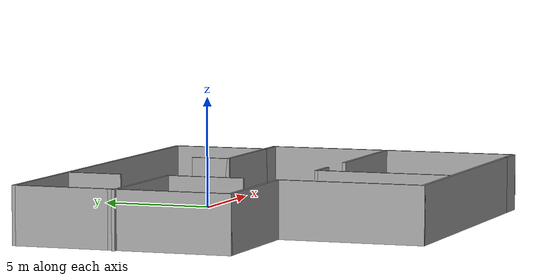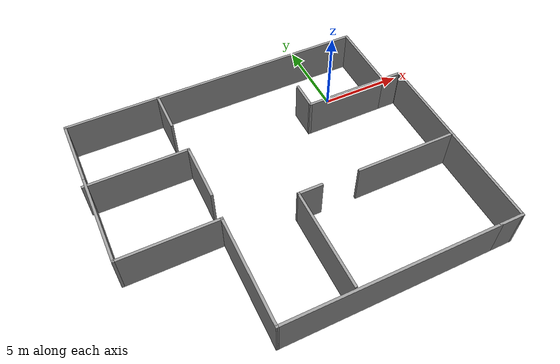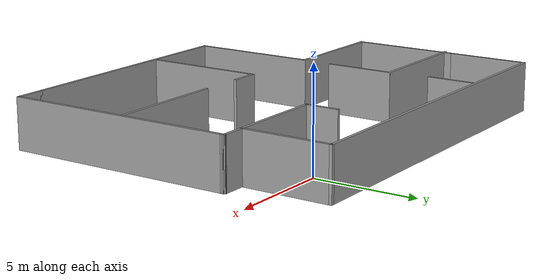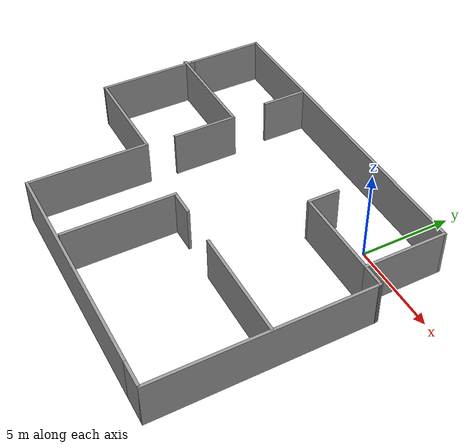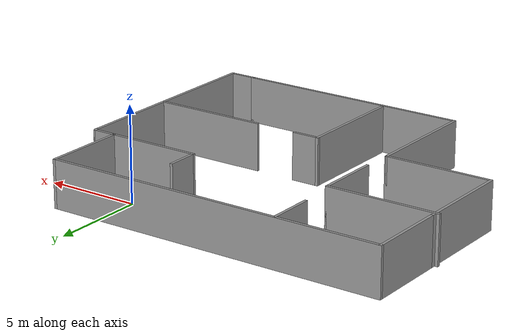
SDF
<?xml version='1.0'?>
<sdf version='1.7'>
  <model name='room'>
    <pose>-5.93375 -5.39 0 0 -0 0</pose>
    <link name='Wall_0'>
      <collision name='Wall_0_Collision'>
        <geometry>
          <box>
            <size>4.5 0.15 2.5</size>
          </box>
        </geometry>
        <pose>0 0 1.25 0 -0 0</pose>
      </collision>
      <visual name='Wall_0_Visual'>
        <pose>0 0 1.25 0 -0 0</pose>
        <geometry>
          <box>
            <size>4.5 0.15 2.5</size>
          </box>
        </geometry>
        <material>
          <script>
            <uri>file://media/materials/scripts/gazebo.material</uri>
            <name>Gazebo/Grey</name>
          </script>
          <ambient>1 1 1 1</ambient>
        </material>
        <meta>
          <layer>0</layer>
        </meta>
      </visual>
      <pose>8.52375 5.725 0 0 -0 1.5708</pose>
    </link>
    <link name='Wall_1'>
      <collision name='Wall_1_Collision'>
        <geometry>
          <box>
            <size>18.25 0.15 2.5</size>
          </box>
        </geometry>
        <pose>0 0 1.25 0 -0 0</pose>
      </collision>
      <visual name='Wall_1_Visual'>
        <pose>0 0 1.25 0 -0 0</pose>
        <geometry>
          <box>
            <size>18.25 0.15 2.5</size>
          </box>
        </geometry>
        <material>
          <script>
            <uri>file://media/materials/scripts/gazebo.material</uri>
            <name>Gazebo/Grey</name>
          </script>
          <ambient>1 1 1 1</ambient>
        </material>
        <meta>
          <layer>0</layer>
        </meta>
      </visual>
      <pose>-0.526248 7.9 0 0 -0 3.14159</pose>
    </link>
    <link name='Wall_10'>
      <collision name='Wall_10_Collision'>
        <geometry>
          <box>
            <size>0.25 0.15 2.5</size>
          </box>
        </geometry>
        <pose>0 0 1.25 0 -0 0</pose>
      </collision>
      <visual name='Wall_10_Visual'>
        <pose>0 0 1.25 0 -0 0</pose>
        <geometry>
          <box>
            <size>0.25 0.15 2.5</size>
          </box>
        </geometry>
        <material>
          <script>
            <uri>file://media/materials/scripts/gazebo.material</uri>
            <name>Gazebo/Grey</name>
          </script>
          <ambient>1 1 1 1</ambient>
        </material>
        <meta>
          <layer>0</layer>
        </meta>
      </visual>
      <pose>9.71081 3.4983 0 0 -0 1.8326</pose>
    </link>
    <link name='Wall_11'>
      <collision name='Wall_11_Collision'>
        <geometry>
          <box>
            <size>1.32412 0.15 2.5</size>
          </box>
        </geometry>
        <pose>0 0 1.25 0 -0 0</pose>
      </collision>
      <visual name='Wall_11_Visual'>
        <pose>0 0 1.25 0 -0 0</pose>
        <geometry>
          <box>
            <size>1.32412 0.15 2.5</size>
          </box>
        </geometry>
        <material>
          <script>
            <uri>file://media/materials/scripts/gazebo.material</uri>
            <name>Gazebo/Grey</name>
          </script>
          <ambient>1 1 1 1</ambient>
        </material>
        <meta>
          <layer>0</layer>
        </meta>
      </visual>
      <pose>9.11081 3.5483 0 0 -0 3.13869</pose>
    </link>
    <link name='Wall_13'>
      <collision name='Wall_13_Collision'>
        <geometry>
          <box>
            <size>5 0.15 2.5</size>
          </box>
        </geometry>
        <pose>0 0 1.25 0 -0 0</pose>
      </collision>
      <visual name='Wall_13_Visual'>
        <pose>0 0 1.25 0 -0 0</pose>
        <geometry>
          <box>
            <size>5 0.15 2.5</size>
          </box>
        </geometry>
        <material>
          <script>
            <uri>file://media/materials/scripts/gazebo.material</uri>
            <name>Gazebo/Grey</name>
          </script>
          <ambient>1 1 1 1</ambient>
        </material>
        <meta>
          <layer>0</layer>
        </meta>
      </visual>
      <pose>6.09875 3.55 0 0 -0 3.14159</pose>
    </link>
    <link name='Wall_14'>
      <collision name='Wall_14_Collision'>
        <geometry>
          <box>
            <size>1.75 0.15 2.5</size>
          </box>
        </geometry>
        <pose>0 0 1.25 0 -0 0</pose>
      </collision>
      <visual name='Wall_14_Visual'>
        <pose>0 0 1.25 0 -0 0</pose>
        <geometry>
          <box>
            <size>1.75 0.15 2.5</size>
          </box>
        </geometry>
        <material>
          <script>
            <uri>file://media/materials/scripts/gazebo.material</uri>
            <name>Gazebo/Grey</name>
          </script>
          <ambient>1 1 1 1</ambient>
        </material>
        <meta>
          <layer>0</layer>
        </meta>
      </visual>
      <pose>3.67375 4.35 0 0 -0 1.5708</pose>
    </link>
    <link name='Wall_16'>
      <collision name='Wall_16_Collision'>
        <geometry>
          <box>
            <size>6 0.15 2.5</size>
          </box>
        </geometry>
        <pose>0 0 1.25 0 -0 0</pose>
      </collision>
      <visual name='Wall_16_Visual'>
        <pose>0 0 1.25 0 -0 0</pose>
        <geometry>
          <box>
            <size>6 0.15 2.5</size>
          </box>
        </geometry>
        <material>
          <script>
            <uri>file://media/materials/scripts/gazebo.material</uri>
            <name>Gazebo/Grey</name>
          </script>
          <ambient>1 1 1 1</ambient>
        </material>
        <meta>
          <layer>0</layer>
        </meta>
      </visual>
      <pose>-6.81561 3.41448 0 0 -0 0</pose>
    </link>
    <link name='Wall_17'>
      <collision name='Wall_17_Collision'>
        <geometry>
          <box>
            <size>3.5 0.15 2.5</size>
          </box>
        </geometry>
        <pose>0 0 1.25 0 -0 0</pose>
      </collision>
      <visual name='Wall_17_Visual'>
        <pose>0 0 1.25 0 -0 0</pose>
        <geometry>
          <box>
            <size>3.5 0.15 2.5</size>
          </box>
        </geometry>
        <material>
          <script>
            <uri>file://media/materials/scripts/gazebo.material</uri>
            <name>Gazebo/Grey</name>
          </script>
          <ambient>1 1 1 1</ambient>
        </material>
        <meta>
          <layer>0</layer>
        </meta>
      </visual>
      <pose>-3.89061 1.73948 0 0 -0 -1.5708</pose>
    </link>
    <link name='Wall_19'>
      <collision name='Wall_19_Collision'>
        <geometry>
          <box>
            <size>2.5 0.15 2.5</size>
          </box>
        </geometry>
        <pose>0 0 1.25 0 -0 0</pose>
      </collision>
      <visual name='Wall_19_Visual'>
        <pose>0 0 1.25 0 -0 0</pose>
        <geometry>
          <box>
            <size>2.5 0.15 2.5</size>
          </box>
        </geometry>
        <material>
          <script>
            <uri>file://media/materials/scripts/gazebo.material</uri>
            <name>Gazebo/Grey</name>
          </script>
          <ambient>1 1 1 1</ambient>
        </material>
        <meta>
          <layer>0</layer>
        </meta>
      </visual>
      <pose>-4.11728 6.68959 0 0 -0 -1.5708</pose>
    </link>
    <link name='Wall_2'>
      <collision name='Wall_2_Collision'>
        <geometry>
          <box>
            <size>4.25 0.15 2.5</size>
          </box>
        </geometry>
        <pose>0 0 1.25 0 -0 0</pose>
      </collision>
      <visual name='Wall_2_Visual'>
        <pose>0 0 1.25 0 -0 0</pose>
        <geometry>
          <box>
            <size>4.25 0.15 2.5</size>
          </box>
        </geometry>
        <material>
          <script>
            <uri>file://media/materials/scripts/gazebo.material</uri>
            <name>Gazebo/Grey</name>
          </script>
          <ambient>1 1 1 1</ambient>
        </material>
        <meta>
          <layer>0</layer>
        </meta>
      </visual>
      <pose>-9.57625 5.85 0 0 -0 -1.5708</pose>
    </link>
    <link name='Wall_22'>
      <collision name='Wall_22_Collision'>
        <geometry>
          <box>
            <size>6 0.15 2.5</size>
          </box>
        </geometry>
        <pose>0 0 1.25 0 -0 0</pose>
      </collision>
      <visual name='Wall_22_Visual'>
        <pose>0 0 1.25 0 -0 0</pose>
        <geometry>
          <box>
            <size>6 0.15 2.5</size>
          </box>
        </geometry>
        <material>
          <script>
            <uri>file://media/materials/scripts/gazebo.material</uri>
            <name>Gazebo/Grey</name>
          </script>
          <ambient>1 1 1 1</ambient>
        </material>
        <meta>
          <layer>0</layer>
        </meta>
      </visual>
      <pose>0.166247 -4.76975 0 0 -0 -1.5708</pose>
    </link>
    <link name='Wall_24'>
      <collision name='Wall_24_Collision'>
        <geometry>
          <box>
            <size>1.5 0.15 2.5</size>
          </box>
        </geometry>
        <pose>0 0 1.25 0 -0 0</pose>
      </collision>
      <visual name='Wall_24_Visual'>
        <pose>0 0 1.25 0 -0 0</pose>
        <geometry>
          <box>
            <size>1.5 0.15 2.5</size>
          </box>
        </geometry>
        <material>
          <script>
            <uri>file://media/materials/scripts/gazebo.material</uri>
            <name>Gazebo/Grey</name>
          </script>
          <ambient>1 1 1 1</ambient>
        </material>
        <meta>
          <layer>0</layer>
        </meta>
      </visual>
      <pose>0.841247 -1.84475 0 0 -0 0</pose>
    </link>
    <link name='Wall_27'>
      <collision name='Wall_27_Collision'>
        <geometry>
          <box>
            <size>6 0.15 2.5</size>
          </box>
        </geometry>
        <pose>0 0 1.25 0 -0 0</pose>
      </collision>
      <visual name='Wall_27_Visual'>
        <pose>0 0 1.25 0 -0 0</pose>
        <geometry>
          <box>
            <size>6 0.15 2.5</size>
          </box>
        </geometry>
        <material>
          <script>
            <uri>file://media/materials/scripts/gazebo.material</uri>
            <name>Gazebo/Grey</name>
          </script>
          <ambient>1 1 1 1</ambient>
        </material>
        <meta>
          <layer>0</layer>
        </meta>
      </visual>
      <pose>6.7228 -1.87766 0 0 -0 3.14159</pose>
    </link>
    <link name='Wall_4'>
      <collision name='Wall_4_Collision'>
        <geometry>
          <box>
            <size>5.5 0.15 2.5</size>
          </box>
        </geometry>
        <pose>0 0 1.25 0 -0 0</pose>
      </collision>
      <visual name='Wall_4_Visual'>
        <pose>0 0 1.25 0 -0 0</pose>
        <geometry>
          <box>
            <size>5.5 0.15 2.5</size>
          </box>
        </geometry>
        <material>
          <script>
            <uri>file://media/materials/scripts/gazebo.material</uri>
            <name>Gazebo/Grey</name>
          </script>
          <ambient>1 1 1 1</ambient>
        </material>
        <meta>
          <layer>0</layer>
        </meta>
      </visual>
      <pose>-9.57625 1.125 0 0 -0 -1.5708</pose>
    </link>
    <link name='Wall_5'>
      <collision name='Wall_5_Collision'>
        <geometry>
          <box>
            <size>5.75 0.15 2.5</size>
          </box>
        </geometry>
        <pose>0 0 1.25 0 -0 0</pose>
      </collision>
      <visual name='Wall_5_Visual'>
        <pose>0 0 1.25 0 -0 0</pose>
        <geometry>
          <box>
            <size>5.75 0.15 2.5</size>
          </box>
        </geometry>
        <material>
          <script>
            <uri>file://media/materials/scripts/gazebo.material</uri>
            <name>Gazebo/Grey</name>
          </script>
          <ambient>1 1 1 1</ambient>
        </material>
        <meta>
          <layer>0</layer>
        </meta>
      </visual>
      <pose>-6.77625 -1.55 0 0 -0 0</pose>
    </link>
    <link name='Wall_6'>
      <collision name='Wall_6_Collision'>
        <geometry>
          <box>
            <size>6.5 0.15 2.5</size>
          </box>
        </geometry>
        <pose>0 0 1.25 0 -0 0</pose>
      </collision>
      <visual name='Wall_6_Visual'>
        <pose>0 0 1.25 0 -0 0</pose>
        <geometry>
          <box>
            <size>6.5 0.15 2.5</size>
          </box>
        </geometry>
        <material>
          <script>
            <uri>file://media/materials/scripts/gazebo.material</uri>
            <name>Gazebo/Grey</name>
          </script>
          <ambient>1 1 1 1</ambient>
        </material>
        <meta>
          <layer>0</layer>
        </meta>
      </visual>
      <pose>-3.97625 -4.725 0 0 -0 -1.5708</pose>
    </link>
    <link name='Wall_7'>
      <collision name='Wall_7_Collision'>
        <geometry>
          <box>
            <size>12.5 0.15 2.5</size>
          </box>
        </geometry>
        <pose>0 0 1.25 0 -0 0</pose>
      </collision>
      <visual name='Wall_7_Visual'>
        <pose>0 0 1.25 0 -0 0</pose>
        <geometry>
          <box>
            <size>12.5 0.15 2.5</size>
          </box>
        </geometry>
        <material>
          <script>
            <uri>file://media/materials/scripts/gazebo.material</uri>
            <name>Gazebo/Grey</name>
          </script>
          <ambient>1 1 1 1</ambient>
        </material>
        <meta>
          <layer>0</layer>
        </meta>
      </visual>
      <pose>2.19875 -7.9 0 0 -0 0</pose>
    </link>
    <link name='Wall_8'>
      <collision name='Wall_8_Collision'>
        <geometry>
          <box>
            <size>1.5 0.15 2.5</size>
          </box>
        </geometry>
        <pose>0 0 1.25 0 -0 0</pose>
      </collision>
      <visual name='Wall_8_Visual'>
        <pose>0 0 1.25 0 -0 0</pose>
        <geometry>
          <box>
            <size>1.5 0.15 2.5</size>
          </box>
        </geometry>
        <material>
          <script>
            <uri>file://media/materials/scripts/gazebo.material</uri>
            <name>Gazebo/Grey</name>
          </script>
          <ambient>1 1 1 1</ambient>
        </material>
        <meta>
          <layer>0</layer>
        </meta>
      </visual>
      <pose>9.04875 -7.9 0 0 -0 0</pose>
    </link>
    <link name='Wall_9'>
      <collision name='Wall_9_Collision'>
        <geometry>
          <box>
            <size>11.5 0.15 2.5</size>
          </box>
        </geometry>
        <pose>0 0 1.25 0 -0 0</pose>
      </collision>
      <visual name='Wall_9_Visual'>
        <pose>0 0 1.25 0 -0 0</pose>
        <geometry>
          <box>
            <size>11.5 0.15 2.5</size>
          </box>
        </geometry>
        <material>
          <script>
            <uri>file://media/materials/scripts/gazebo.material</uri>
            <name>Gazebo/Grey</name>
          </script>
          <ambient>1 1 1 1</ambient>
        </material>
        <meta>
          <layer>0</layer>
        </meta>
      </visual>
      <pose>9.72375 -2.225 0 0 -0 1.5708</pose>
    </link>
    <static>1</static>
  </model>
</sdf>
